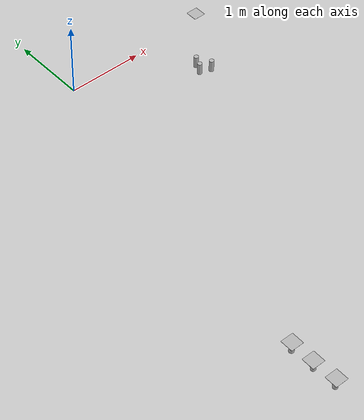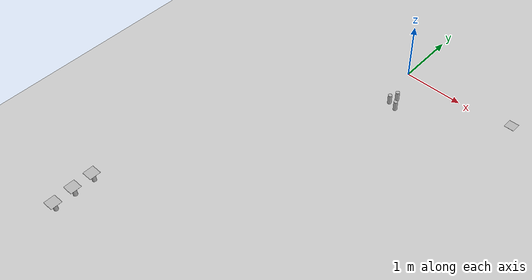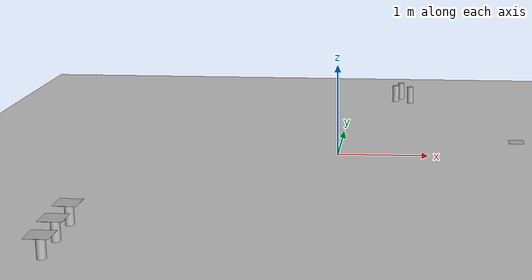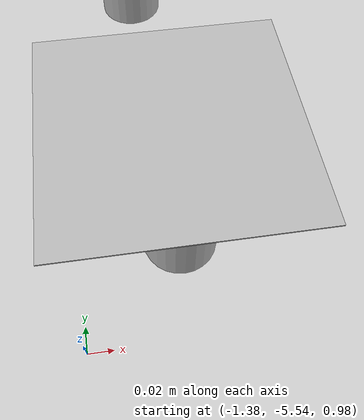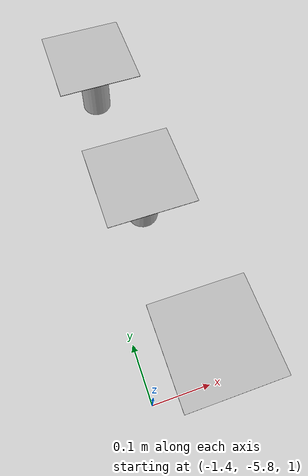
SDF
<sdf version="1.7">
 <world name="default">
  <plugin name="gazebo_ros_state" filename="libgazebo_ros_state.so">
   <ros><namespace>/gazebo</namespace></ros>
   <update_rate>1.0</update_rate>
  </plugin>
  <light name="sun" type="directional">
   <pose>0 0 10 0 -0 0</pose>
   <diffuse>0.8 0.8 0.8 1</diffuse>
   <specular>0.2 0.2 0.2 1</specular>
   <attenuation>
    <range>1000</range>
    <constant>0.9</constant>
    <linear>0.01</linear>
    <quadratic>0.001</quadratic>
   </attenuation>
   <direction>0 0.5 -0.9</direction>
   <spot><inner_angle>0</inner_angle><outer_angle>0</outer_angle><falloff>0</falloff></spot>
  </light>
  <light name="point_light" type="point">
   <pose>0 -0.377195 6.59868 0 -0 0</pose>
   <diffuse>0.784314 0.784314 0.784314 1</diffuse>
   <specular>0.0980392 0.0980392 0.0980392 1</specular>
   <attenuation>
    <range>50</range>
    <constant>0.8</constant>
    <linear>0</linear>
    <quadratic>0.001</quadratic>
   </attenuation>
   <cast_shadows>0</cast_shadows>
   <direction>0 0 -1</direction>
   <spot><inner_angle>0</inner_angle><outer_angle>0</outer_angle><falloff>0</falloff></spot>
  </light>
  <model name="ground_plane">
   <static>1</static>
   <link name="link">
    <collision name="collision">
     <geometry><plane><normal>0 0 1</normal><size>100 100</size></plane></geometry>
     <surface>
      <contact><collide_bitmask>65535</collide_bitmask></contact>
      <friction><ode><mu>100</mu><mu2>50</mu2></ode></friction>
     </surface>
    </collision>
    <visual name="visual">
     <cast_shadows>0</cast_shadows>
     <geometry><plane><normal>0 0 1</normal><size>100 100</size></plane></geometry>
     <material>
      <script><uri>file://media/materials/scripts/gazebo.material</uri><name>Gazebo/Grey</name></script>
     </material>
    </visual>
   </link>
  </model>
  <gravity>0 0 -9.8</gravity>
  <magnetic_field>6e-06 2.3e-05 -4.2e-05</magnetic_field>
  <atmosphere type="adiabatic"/>
  <physics type="ode">
   <max_step_size>0.001</max_step_size>
   <real_time_factor>1</real_time_factor>
   <real_time_update_rate>1000</real_time_update_rate>
  </physics>
  <scene><ambient>0.4 0.4 0.4 1</ambient><background>0.7 0.7 0.7 1</background><shadows>1</shadows></scene>
  <audio><device>default</device></audio>
  <spherical_coordinates>
   <surface_model>EARTH_WGS84</surface_model>
   <latitude_deg>0</latitude_deg>
   <longitude_deg>0</longitude_deg>
   <elevation>0</elevation>
   <heading_deg>0</heading_deg>
  </spherical_coordinates>
  <model name="biscuits_pack">
   <static>0</static>
   <link name="link">
    <inertial>
     <mass>0.25</mass>
     <inertia><ixx>0</ixx><ixy>0</ixy><ixz>0</ixz><iyy>0</iyy><iyz>0</iyz><izz>0</izz></inertia>
    </inertial>
    <collision name="collision">
     <geometry><cylinder><radius>0.029</radius><length>0.15</length></cylinder></geometry>
    </collision>
    <visual name="visual">
     <geometry><cylinder><radius>0.029</radius><length>0.15</length></cylinder></geometry>
     <material>
      <script>
       <uri>model://biscuits_pack/material/scripts</uri>
       <uri>model://biscuits_pack/material/textures</uri>
       <name>Custom/biscuits_pack</name>
      </script>
     </material>
    </visual>
    <velocity_decay><linear>0</linear><angular>0</angular></velocity_decay>
   </link>
   <pose>0.809183 -1.58807 1.05001 -0.000347 -5.6e-05 0.000463</pose>
  </model>
  <model name="biscuits_pack_0">
   <static>0</static>
   <link name="link">
    <inertial>
     <mass>0.25</mass>
     <inertia><ixx>0</ixx><ixy>0</ixy><ixz>0</ixz><iyy>0</iyy><iyz>0</iyz><izz>0</izz></inertia>
    </inertial>
    <collision name="collision">
     <geometry><cylinder><radius>0.029</radius><length>0.15</length></cylinder></geometry>
    </collision>
    <visual name="visual">
     <geometry><cylinder><radius>0.029</radius><length>0.15</length></cylinder></geometry>
     <material>
      <script>
       <uri>model://biscuits_pack/material/scripts</uri>
       <uri>model://biscuits_pack/material/textures</uri>
       <name>Custom/biscuits_pack</name>
      </script>
     </material>
    </visual>
    <velocity_decay><linear>0</linear><angular>0</angular></velocity_decay>
   </link>
   <pose>0.719937 -1.42329 1.05002 -0.000552 -1.8e-05 -0.000132</pose>
  </model>
  <model name="biscuits_pack_1">
   <static>0</static>
   <link name="link">
    <inertial>
     <mass>0.25</mass>
     <inertia><ixx>0</ixx><ixy>0</ixy><ixz>0</ixz><iyy>0</iyy><iyz>0</iyz><izz>0</izz></inertia>
    </inertial>
    <collision name="collision">
     <geometry><cylinder><radius>0.029</radius><length>0.15</length></cylinder></geometry>
    </collision>
    <visual name="visual">
     <geometry><cylinder><radius>0.029</radius><length>0.15</length></cylinder></geometry>
     <material>
      <script>
       <uri>model://biscuits_pack/material/scripts</uri>
       <uri>model://biscuits_pack/material/textures</uri>
       <name>Custom/biscuits_pack</name>
      </script>
     </material>
    </visual>
    <velocity_decay><linear>0</linear><angular>0</angular></velocity_decay>
   </link>
   <pose>0.673553 -1.53787 1.05001 -0.000321 -6.4e-05 -0.00011</pose>
  </model>
  <model name="cocacola">
   <static>0</static>
   <link name="link">
    <inertial>
     <mass>0.25</mass>
     <inertia><ixx>0</ixx><ixy>0</ixy><ixz>0</ixz><iyy>0</iyy><iyz>0</iyz><izz>0</izz></inertia>
    </inertial>
    <collision name="collision">
     <pose>0 0 0.075 -3.14159 -0 0</pose>
     <geometry><cylinder><radius>0.03</radius><length>0.15</length></cylinder></geometry>
    </collision>
    <visual name="visual">
     <pose>0 0 0.075 -3.14159 -0 0</pose>
     <geometry><cylinder><radius>0.03</radius><length>0.15</length></cylinder></geometry>
     <material>
      <script>
       <uri>model://cocacola/material/scripts</uri>
       <uri>model://cocacola/material/textures</uri>
       <name>Custom/cocacola</name>
      </script>
     </material>
    </visual>
    <velocity_decay><linear>0</linear><angular>0</angular></velocity_decay>
   </link>
   <pose>-1.30821 -5.15756 0.974999 4.9e-05 0.000201 -3.6e-05</pose>
  </model>
  <model name="cocacola_0">
   <static>0</static>
   <link name="link">
    <inertial>
     <mass>0.25</mass>
     <inertia><ixx>0</ixx><ixy>0</ixy><ixz>0</ixz><iyy>0</iyy><iyz>0</iyz><izz>0</izz></inertia>
    </inertial>
    <collision name="collision">
     <pose>0 0 0.075 -3.14159 -0 0</pose>
     <geometry><cylinder><radius>0.03</radius><length>0.15</length></cylinder></geometry>
    </collision>
    <visual name="visual">
     <pose>0 0 0.075 -3.14159 -0 0</pose>
     <geometry><cylinder><radius>0.03</radius><length>0.15</length></cylinder></geometry>
     <material>
      <script>
       <uri>model://cocacola/material/scripts</uri>
       <uri>model://cocacola/material/textures</uri>
       <name>Custom/cocacola</name>
      </script>
     </material>
    </visual>
    <velocity_decay><linear>0</linear><angular>0</angular></velocity_decay>
   </link>
   <pose>-1.29951 -5.45549 0.974978 -0.000155 0.000157 -7e-06</pose>
  </model>
  <model name="cocacola_1">
   <static>0</static>
   <link name="link">
    <inertial>
     <mass>0.25</mass>
     <inertia><ixx>0</ixx><ixy>0</ixy><ixz>0</ixz><iyy>0</iyy><iyz>0</iyz><izz>0</izz></inertia>
    </inertial>
    <collision name="collision">
     <pose>0 0 0.075 -3.14159 -0 0</pose>
     <geometry><cylinder><radius>0.03</radius><length>0.15</length></cylinder></geometry>
    </collision>
    <visual name="visual">
     <pose>0 0 0.075 -3.14159 -0 0</pose>
     <geometry><cylinder><radius>0.03</radius><length>0.15</length></cylinder></geometry>
     <material>
      <script>
       <uri>model://cocacola/material/scripts</uri>
       <uri>model://cocacola/material/textures</uri>
       <name>Custom/cocacola</name>
      </script>
     </material>
    </visual>
    <velocity_decay><linear>0</linear><angular>0</angular></velocity_decay>
   </link>
   <pose>-1.2888 -5.75127 0.975009 -0.000455 -6.9e-05 -1.6e-05</pose>
  </model>
  <model name="aruco_marker_250_6x6_1">
   <static>0</static>
   <link name="marker">
    <inertial>
     <mass>0.1</mass>
     <inertia><ixx>0</ixx><ixy>0</ixy><ixz>0</ixz><iyy>0</iyy><iyz>0</iyz><izz>0</izz></inertia>
    </inertial>
    <visual name="visual">
     <pose>0 0 0 0 -0 1.57</pose>
     <geometry><box><size>0.16 0.16 0.001</size></box></geometry>
     <material>
      <script>
       <uri>model://aruco_marker_250_6x6_1/material/scripts</uri>
       <uri>model://aruco_marker_250_6x6_1/material/textures</uri>
       <name>Aruco/aruco_marker_250_6x6_1</name>
      </script>
     </material>
    </visual>
    <collision name="collision"><geometry><box><size>0.16 0.16 0.001</size></box></geometry></collision>
    <self_collide>1</self_collide>
   </link>
   <pose>-1.3119 -5.16155 1.12549 -9.9e-05 0.000199 -1.6e-05</pose>
  </model>
  <model name="aruco_marker_250_6x6_2">
   <static>0</static>
   <link name="marker">
    <inertial>
     <mass>0.1</mass>
     <inertia><ixx>0</ixx><ixy>0</ixy><ixz>0</ixz><iyy>0</iyy><iyz>0</iyz><izz>0</izz></inertia>
    </inertial>
    <visual name="visual">
     <pose>0 0 0 0 -0 1.57</pose>
     <geometry><box><size>0.16 0.16 0.001</size></box></geometry>
     <material>
      <script>
       <uri>model://aruco_marker_250_6x6_2/material/scripts</uri>
       <uri>model://aruco_marker_250_6x6_2/material/textures</uri>
       <name>Aruco/aruco_marker_250_6x6_2</name>
      </script>
     </material>
    </visual>
    <collision name="collision"><geometry><box><size>0.16 0.16 0.001</size></box></geometry></collision>
    <self_collide>1</self_collide>
   </link>
   <pose>-1.3069 -5.45593 1.12549 4.8e-05 0.000178 -7e-06</pose>
  </model>
  <model name="aruco_marker_250_6x6_3">
   <static>0</static>
   <link name="marker">
    <inertial>
     <mass>0.1</mass>
     <inertia><ixx>0</ixx><ixy>0</ixy><ixz>0</ixz><iyy>0</iyy><iyz>0</iyz><izz>0</izz></inertia>
    </inertial>
    <visual name="visual">
     <pose>0 0 0 0 -0 1.57</pose>
     <geometry><box><size>0.16 0.16 0.001</size></box></geometry>
     <material>
      <script>
       <uri>model://aruco_marker_250_6x6_3/material/scripts</uri>
       <uri>model://aruco_marker_250_6x6_3/material/textures</uri>
       <name>Aruco/aruco_marker_250_6x6_3</name>
      </script>
     </material>
    </visual>
    <collision name="collision"><geometry><box><size>0.16 0.16 0.001</size></box></geometry></collision>
    <self_collide>1</self_collide>
   </link>
   <pose>-1.28895 -5.75657 1.1255 -0.000611 -0.000111 -2e-06</pose>
  </model>
  <model name="aruco_marker_250_6x6_4">
   <static>0</static>
   <link name="marker">
    <inertial>
     <mass>0.1</mass>
     <inertia><ixx>0</ixx><ixy>0</ixy><ixz>0</ixz><iyy>0</iyy><iyz>0</iyz><izz>0</izz></inertia>
    </inertial>
    <visual name="visual">
     <pose>0 0 0 0 -0 1.57</pose>
     <geometry><box><size>0.16 0.16 0.001</size></box></geometry>
     <material>
      <script>
       <uri>model://aruco_marker_250_6x6_4/material/scripts</uri>
       <uri>model://aruco_marker_250_6x6_4/material/textures</uri>
       <name>Aruco/aruco_marker_250_6x6_4</name>
      </script>
     </material>
    </visual>
    <collision name="collision"><geometry><box><size>0.16 0.16 0.001</size></box></geometry></collision>
    <self_collide>1</self_collide>
   </link>
   <pose>1.94316 -0.041802 0.19031 2.4e-05 0.000305 4.1e-05</pose>
  </model>
 </world>
</sdf>
